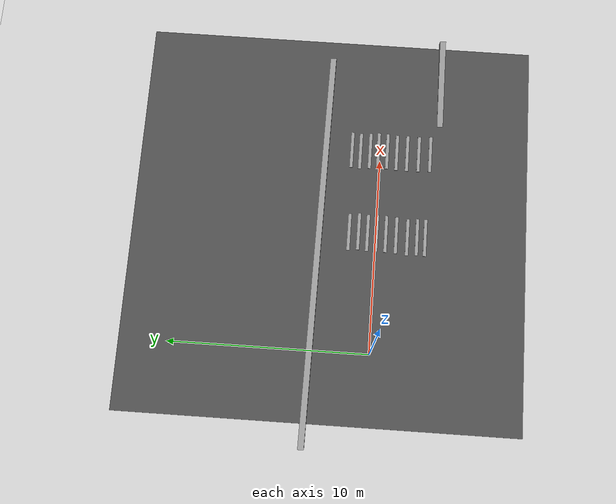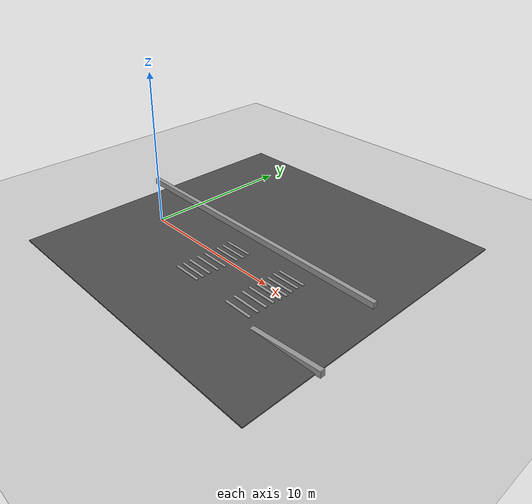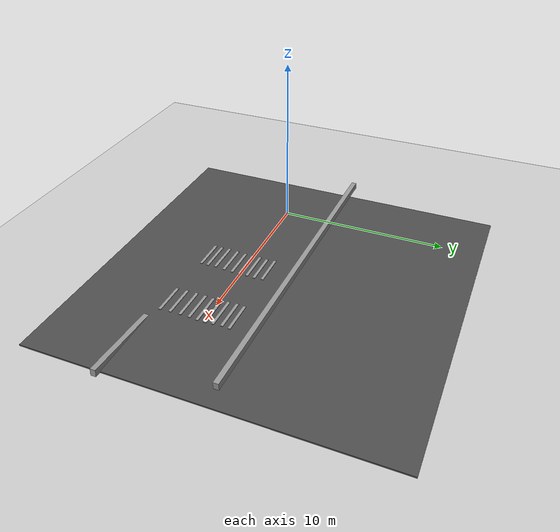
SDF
<sdf version="1.7">
 <world name="default">
  <model name="ground_plane">
   <static>1</static>
   <link name="link">
    <collision name="collision">
     <geometry><plane><normal>0 0 1</normal><size>100 100</size></plane></geometry>
     <surface><friction><ode><mu>100</mu><mu2>50</mu2></ode></friction></surface>
    </collision>
    <visual name="visual">
     <cast_shadows>0</cast_shadows>
     <geometry><plane><normal>0 0 1</normal><size>100 100</size></plane></geometry>
     <material>
      <script><uri>file://media/materials/scripts/gazebo.material</uri><name>Gazebo/Grey</name></script>
     </material>
    </visual>
   </link>
  </model>
  <light name="sun" type="directional">
   <pose>0 0 10 0 -0 0</pose>
   <diffuse>0.8 0.8 0.8 1</diffuse>
   <specular>0.2 0.2 0.2 1</specular>
   <attenuation>
    <range>1000</range>
    <constant>0.9</constant>
    <linear>0.01</linear>
    <quadratic>0.001</quadratic>
   </attenuation>
   <direction>-0.5 0.1 -0.9</direction>
   <spot><inner_angle>0</inner_angle><outer_angle>0</outer_angle><falloff>0</falloff></spot>
  </light>
  <scene><shadows>0</shadows><ambient>0.4 0.4 0.4 1</ambient><background>0.7 0.7 0.7 1</background></scene>
  <physics type="ode">
   <real_time_update_rate>1000</real_time_update_rate>
   <max_step_size>0.001</max_step_size>
   <real_time_factor>1</real_time_factor>
   <ode>
    <solver>
     <type>quick</type>
     <iters>150</iters>
     <precon_iters>0</precon_iters>
     <sor>1.4</sor>
     <use_dynamic_moi_rescaling>1</use_dynamic_moi_rescaling>
    </solver>
    <constraints>
     <cfm>1e-05</cfm>
     <erp>0.2</erp>
     <contact_max_correcting_vel>2000</contact_max_correcting_vel>
     <contact_surface_layer>0.01</contact_surface_layer>
    </constraints>
   </ode>
  </physics>
  <gravity>0 0 -9.8</gravity>
  <magnetic_field>6e-06 2.3e-05 -4.2e-05</magnetic_field>
  <atmosphere type="adiabatic"/>
  <audio><device>default</device></audio>
  <spherical_coordinates>
   <surface_model>EARTH_WGS84</surface_model>
   <latitude_deg>0</latitude_deg>
   <longitude_deg>0</longitude_deg>
   <elevation>0</elevation>
   <heading_deg>0</heading_deg>
  </spherical_coordinates>
  <model name="asphalt_plane">
   <static>1</static>
   <link name="link">
    <collision name="collision"><geometry><box><size>20 20 0.1</size></box></geometry></collision>
    <visual name="visual">
     <cast_shadows>0</cast_shadows>
     <geometry><box><size>20 20 0.1</size></box></geometry>
     <material>
      <script>
       <uri>model://asphalt_plane/materials/scripts</uri>
       <uri>model://asphalt_plane/materials/textures</uri>
       <name>vrc/asphalt</name>
      </script>
     </material>
    </visual>
   </link>
   <pose>6.48821 2.39059 0 0 -0 0</pose>
  </model>
  <model name="unit_box">
   <pose>6.14235 1.3627 0.069768 0 -6.2e-05 0.001556</pose>
   <link name="link">
    <inertial>
     <mass>1</mass>
     <inertia>
      <ixx>0.166667</ixx>
      <ixy>0</ixy>
      <ixz>0</ixz>
      <iyy>0.166667</iyy>
      <iyz>0</iyz>
      <izz>0.166667</izz>
     </inertia>
    </inertial>
    <collision name="collision"><geometry><box><size>1.90796 0.165074 0.039653</size></box></geometry></collision>
    <visual name="visual">
     <geometry><box><size>1.90796 0.165074 0.039653</size></box></geometry>
     <material>
      <script><name>Gazebo/Grey</name><uri>file://media/materials/scripts/gazebo.material</uri></script>
     </material>
    </visual>
   </link>
  </model>
  <model name="unit_box_clone">
   <pose>6.19397 0.878666 0.069768 0 6.2e-05 0.001528</pose>
   <link name="link">
    <inertial>
     <mass>1</mass>
     <inertia>
      <ixx>0.166667</ixx>
      <ixy>0</ixy>
      <ixz>0</ixz>
      <iyy>0.166667</iyy>
      <iyz>0</iyz>
      <izz>0.166667</izz>
     </inertia>
    </inertial>
    <collision name="collision"><geometry><box><size>1.90796 0.165074 0.039653</size></box></geometry></collision>
    <visual name="visual">
     <geometry><box><size>1.90796 0.165074 0.039653</size></box></geometry>
     <material>
      <script><name>Gazebo/Grey</name><uri>file://media/materials/scripts/gazebo.material</uri></script>
     </material>
    </visual>
   </link>
  </model>
  <model name="unit_box_clone_0">
   <pose>6.15597 0.419684 0.069768 0 6.2e-05 0.001744</pose>
   <link name="link">
    <inertial>
     <mass>1</mass>
     <inertia>
      <ixx>0.166667</ixx>
      <ixy>0</ixy>
      <ixz>0</ixz>
      <iyy>0.166667</iyy>
      <iyz>0</iyz>
      <izz>0.166667</izz>
     </inertia>
    </inertial>
    <collision name="collision"><geometry><box><size>1.90796 0.165074 0.039653</size></box></geometry></collision>
    <visual name="visual">
     <geometry><box><size>1.90796 0.165074 0.039653</size></box></geometry>
     <material>
      <script><name>Gazebo/Grey</name><uri>file://media/materials/scripts/gazebo.material</uri></script>
     </material>
    </visual>
   </link>
  </model>
  <model name="unit_box_clone_1">
   <pose>6.16792 -0.040699 0.069768 -0 -6.2e-05 0.001638</pose>
   <link name="link">
    <inertial>
     <mass>1</mass>
     <inertia>
      <ixx>0.166667</ixx>
      <ixy>0</ixy>
      <ixz>0</ixz>
      <iyy>0.166667</iyy>
      <iyz>0</iyz>
      <izz>0.166667</izz>
     </inertia>
    </inertial>
    <collision name="collision"><geometry><box><size>1.90796 0.165074 0.039653</size></box></geometry></collision>
    <visual name="visual">
     <geometry><box><size>1.90796 0.165074 0.039653</size></box></geometry>
     <material>
      <script><name>Gazebo/Grey</name><uri>file://media/materials/scripts/gazebo.material</uri></script>
     </material>
    </visual>
   </link>
  </model>
  <model name="unit_box_clone_2">
   <pose>6.15223 -0.509896 0.069768 0 6.2e-05 0.001702</pose>
   <link name="link">
    <inertial>
     <mass>1</mass>
     <inertia>
      <ixx>0.166667</ixx>
      <ixy>0</ixy>
      <ixz>0</ixz>
      <iyy>0.166667</iyy>
      <iyz>0</iyz>
      <izz>0.166667</izz>
     </inertia>
    </inertial>
    <collision name="collision"><geometry><box><size>1.90796 0.165074 0.039653</size></box></geometry></collision>
    <visual name="visual">
     <geometry><box><size>1.90796 0.165074 0.039653</size></box></geometry>
     <material>
      <script><name>Gazebo/Grey</name><uri>file://media/materials/scripts/gazebo.material</uri></script>
     </material>
    </visual>
   </link>
  </model>
  <model name="unit_box_clone_3">
   <pose>6.1205 -1.03586 0.069768 0 6.2e-05 0.001647</pose>
   <link name="link">
    <inertial>
     <mass>1</mass>
     <inertia>
      <ixx>0.166667</ixx>
      <ixy>0</ixy>
      <ixz>0</ixz>
      <iyy>0.166667</iyy>
      <iyz>0</iyz>
      <izz>0.166667</izz>
     </inertia>
    </inertial>
    <collision name="collision"><geometry><box><size>1.90796 0.165074 0.039653</size></box></geometry></collision>
    <visual name="visual">
     <geometry><box><size>1.90796 0.165074 0.039653</size></box></geometry>
     <material>
      <script><name>Gazebo/Grey</name><uri>file://media/materials/scripts/gazebo.material</uri></script>
     </material>
    </visual>
   </link>
  </model>
  <model name="unit_box_clone_4">
   <pose>6.06169 -1.60413 0.06982 0 3e-06 0.000534</pose>
   <link name="link">
    <inertial>
     <mass>1</mass>
     <inertia>
      <ixx>0.166667</ixx>
      <ixy>0</ixy>
      <ixz>0</ixz>
      <iyy>0.166667</iyy>
      <iyz>0</iyz>
      <izz>0.166667</izz>
     </inertia>
    </inertial>
    <collision name="collision"><geometry><box><size>1.90796 0.165074 0.039653</size></box></geometry></collision>
    <visual name="visual">
     <geometry><box><size>1.90796 0.165074 0.039653</size></box></geometry>
     <material>
      <script><name>Gazebo/Grey</name><uri>file://media/materials/scripts/gazebo.material</uri></script>
     </material>
    </visual>
   </link>
  </model>
  <model name="unit_box_clone_5">
   <pose>6.09921 -2.0938 0.069768 0 -6.2e-05 0.001143</pose>
   <link name="link">
    <inertial>
     <mass>1</mass>
     <inertia>
      <ixx>0.166667</ixx>
      <ixy>0</ixy>
      <ixz>0</ixz>
      <iyy>0.166667</iyy>
      <iyz>0</iyz>
      <izz>0.166667</izz>
     </inertia>
    </inertial>
    <collision name="collision"><geometry><box><size>1.90796 0.165074 0.039653</size></box></geometry></collision>
    <visual name="visual">
     <geometry><box><size>1.90796 0.165074 0.039653</size></box></geometry>
     <material>
      <script><name>Gazebo/Grey</name><uri>file://media/materials/scripts/gazebo.material</uri></script>
     </material>
    </visual>
   </link>
  </model>
  <model name="unit_box_clone_6">
   <pose>6.08286 -2.509 0.069768 0 -6.2e-05 0.001595</pose>
   <link name="link">
    <inertial>
     <mass>1</mass>
     <inertia>
      <ixx>0.166667</ixx>
      <ixy>0</ixy>
      <ixz>0</ixz>
      <iyy>0.166667</iyy>
      <iyz>0</iyz>
      <izz>0.166667</izz>
     </inertia>
    </inertial>
    <collision name="collision"><geometry><box><size>1.90796 0.165074 0.039653</size></box></geometry></collision>
    <visual name="visual">
     <geometry><box><size>1.90796 0.165074 0.039653</size></box></geometry>
     <material>
      <script><name>Gazebo/Grey</name><uri>file://media/materials/scripts/gazebo.material</uri></script>
     </material>
    </visual>
   </link>
  </model>
  <model name="unit_box_clone_7">
   <pose>10.5266 1.48121 0.069768 0 -6.2e-05 0.001811</pose>
   <link name="link">
    <inertial>
     <mass>1</mass>
     <inertia>
      <ixx>0.166667</ixx>
      <ixy>0</ixy>
      <ixz>0</ixz>
      <iyy>0.166667</iyy>
      <iyz>0</iyz>
      <izz>0.166667</izz>
     </inertia>
    </inertial>
    <collision name="collision"><geometry><box><size>1.90796 0.165074 0.039653</size></box></geometry></collision>
    <visual name="visual">
     <geometry><box><size>1.90796 0.165074 0.039653</size></box></geometry>
     <material>
      <script><name>Gazebo/Grey</name><uri>file://media/materials/scripts/gazebo.material</uri></script>
     </material>
    </visual>
   </link>
  </model>
  <model name="unit_box_clone_8">
   <pose>10.4888 1.03851 0.069768 -0 6.2e-05 0.00178</pose>
   <link name="link">
    <inertial>
     <mass>1</mass>
     <inertia>
      <ixx>0.166667</ixx>
      <ixy>0</ixy>
      <ixz>0</ixz>
      <iyy>0.166667</iyy>
      <iyz>0</iyz>
      <izz>0.166667</izz>
     </inertia>
    </inertial>
    <collision name="collision"><geometry><box><size>1.90796 0.165074 0.039653</size></box></geometry></collision>
    <visual name="visual">
     <geometry><box><size>1.90796 0.165074 0.039653</size></box></geometry>
     <material>
      <script><name>Gazebo/Grey</name><uri>file://media/materials/scripts/gazebo.material</uri></script>
     </material>
    </visual>
   </link>
  </model>
  <model name="unit_box_clone_9">
   <pose>10.528 0.538461 0.069768 0 -6.2e-05 0.001785</pose>
   <link name="link">
    <inertial>
     <mass>1</mass>
     <inertia>
      <ixx>0.166667</ixx>
      <ixy>0</ixy>
      <ixz>0</ixz>
      <iyy>0.166667</iyy>
      <iyz>0</iyz>
      <izz>0.166667</izz>
     </inertia>
    </inertial>
    <collision name="collision"><geometry><box><size>1.90796 0.165074 0.039653</size></box></geometry></collision>
    <visual name="visual">
     <geometry><box><size>1.90796 0.165074 0.039653</size></box></geometry>
     <material>
      <script><name>Gazebo/Grey</name><uri>file://media/materials/scripts/gazebo.material</uri></script>
     </material>
    </visual>
   </link>
  </model>
  <model name="unit_box_clone_10">
   <pose>10.569 0.110711 0.069768 -0 6.2e-05 0.001797</pose>
   <link name="link">
    <inertial>
     <mass>1</mass>
     <inertia>
      <ixx>0.166667</ixx>
      <ixy>0</ixy>
      <ixz>0</ixz>
      <iyy>0.166667</iyy>
      <iyz>0</iyz>
      <izz>0.166667</izz>
     </inertia>
    </inertial>
    <collision name="collision"><geometry><box><size>1.90796 0.165074 0.039653</size></box></geometry></collision>
    <visual name="visual">
     <geometry><box><size>1.90796 0.165074 0.039653</size></box></geometry>
     <material>
      <script><name>Gazebo/Grey</name><uri>file://media/materials/scripts/gazebo.material</uri></script>
     </material>
    </visual>
   </link>
  </model>
  <model name="unit_box_clone_11">
   <pose>10.5655 -0.353425 0.069768 0 -6.2e-05 0.001779</pose>
   <link name="link">
    <inertial>
     <mass>1</mass>
     <inertia>
      <ixx>0.166667</ixx>
      <ixy>0</ixy>
      <ixz>0</ixz>
      <iyy>0.166667</iyy>
      <iyz>0</iyz>
      <izz>0.166667</izz>
     </inertia>
    </inertial>
    <collision name="collision"><geometry><box><size>1.90796 0.165074 0.039653</size></box></geometry></collision>
    <visual name="visual">
     <geometry><box><size>1.90796 0.165074 0.039653</size></box></geometry>
     <material>
      <script><name>Gazebo/Grey</name><uri>file://media/materials/scripts/gazebo.material</uri></script>
     </material>
    </visual>
   </link>
  </model>
  <model name="unit_box_clone_12">
   <pose>10.5187 -0.845219 0.069768 0 -6.2e-05 0.001789</pose>
   <link name="link">
    <inertial>
     <mass>1</mass>
     <inertia>
      <ixx>0.166667</ixx>
      <ixy>0</ixy>
      <ixz>0</ixz>
      <iyy>0.166667</iyy>
      <iyz>0</iyz>
      <izz>0.166667</izz>
     </inertia>
    </inertial>
    <collision name="collision"><geometry><box><size>1.90796 0.165074 0.039653</size></box></geometry></collision>
    <visual name="visual">
     <geometry><box><size>1.90796 0.165074 0.039653</size></box></geometry>
     <material>
      <script><name>Gazebo/Grey</name><uri>file://media/materials/scripts/gazebo.material</uri></script>
     </material>
    </visual>
   </link>
  </model>
  <model name="unit_box_clone_13">
   <pose>10.5123 -1.3882 0.069768 0 -6.2e-05 0.001795</pose>
   <link name="link">
    <inertial>
     <mass>1</mass>
     <inertia>
      <ixx>0.166667</ixx>
      <ixy>0</ixy>
      <ixz>0</ixz>
      <iyy>0.166667</iyy>
      <iyz>0</iyz>
      <izz>0.166667</izz>
     </inertia>
    </inertial>
    <collision name="collision"><geometry><box><size>1.90796 0.165074 0.039653</size></box></geometry></collision>
    <visual name="visual">
     <geometry><box><size>1.90796 0.165074 0.039653</size></box></geometry>
     <material>
      <script><name>Gazebo/Grey</name><uri>file://media/materials/scripts/gazebo.material</uri></script>
     </material>
    </visual>
   </link>
  </model>
  <model name="unit_box_clone_14">
   <pose>10.5165 -1.98674 0.069826 0 -0 0.000698</pose>
   <link name="link">
    <inertial>
     <mass>1</mass>
     <inertia>
      <ixx>0.166667</ixx>
      <ixy>0</ixy>
      <ixz>0</ixz>
      <iyy>0.166667</iyy>
      <iyz>0</iyz>
      <izz>0.166667</izz>
     </inertia>
    </inertial>
    <collision name="collision"><geometry><box><size>1.90796 0.165074 0.039653</size></box></geometry></collision>
    <visual name="visual">
     <geometry><box><size>1.90796 0.165074 0.039653</size></box></geometry>
     <material>
      <script><name>Gazebo/Grey</name><uri>file://media/materials/scripts/gazebo.material</uri></script>
     </material>
    </visual>
   </link>
  </model>
  <model name="unit_box_clone_14">
   <pose>10.5165 -1.98674 0.069826 0 -0 0.000698</pose>
   <link name="link">
    <inertial>
     <mass>1</mass>
     <inertia>
      <ixx>0.166667</ixx>
      <ixy>0</ixy>
      <ixz>0</ixz>
      <iyy>0.166667</iyy>
      <iyz>0</iyz>
      <izz>0.166667</izz>
     </inertia>
    </inertial>
    <collision name="collision"><geometry><box><size>1.90796 0.165074 0.039653</size></box></geometry></collision>
    <visual name="visual">
     <geometry><box><size>1.90796 0.165074 0.039653</size></box></geometry>
     <material>
      <script><name>Gazebo/Grey</name><uri>file://media/materials/scripts/gazebo.material</uri></script>
     </material>
    </visual>
   </link>
  </model>
  <model name="unit_box_clone_15">
   <pose>10.548 -2.58402 0.069826 0 -0 0.000759</pose>
   <link name="link">
    <inertial>
     <mass>1</mass>
     <inertia>
      <ixx>0.166667</ixx>
      <ixy>0</ixy>
      <ixz>0</ixz>
      <iyy>0.166667</iyy>
      <iyz>0</iyz>
      <izz>0.166667</izz>
     </inertia>
    </inertial>
    <collision name="collision"><geometry><box><size>1.90796 0.165074 0.039653</size></box></geometry></collision>
    <visual name="visual">
     <geometry><box><size>1.90796 0.165074 0.039653</size></box></geometry>
     <material>
      <script><name>Gazebo/Grey</name><uri>file://media/materials/scripts/gazebo.material</uri></script>
     </material>
    </visual>
   </link>
  </model>
  <model name="unit_box_0">
   <pose>5.32465 2.88275 0.246162 0.000132 3e-06 -0.011057</pose>
   <link name="link">
    <inertial>
     <mass>1</mass>
     <inertia>
      <ixx>0.166667</ixx>
      <ixy>0</ixy>
      <ixz>0</ixz>
      <iyy>0.166667</iyy>
      <iyz>0</iyz>
      <izz>0.166667</izz>
     </inertia>
    </inertial>
    <collision name="collision"><geometry><box><size>20.1458 0.304202 0.392307</size></box></geometry></collision>
    <visual name="visual">
     <geometry><box><size>20.1458 0.304202 0.392307</size></box></geometry>
     <material>
      <script><name>Gazebo/Grey</name><uri>file://media/materials/scripts/gazebo.material</uri></script>
     </material>
    </visual>
   </link>
  </model>
  <model name="unit_box_0_clone">
   <pose>6.75965 -3.084 -0.536674 -0.000637 -0.072996 0.011267</pose>
   <link name="link">
    <inertial>
     <mass>1</mass>
     <inertia>
      <ixx>0.166667</ixx>
      <ixy>0</ixy>
      <ixz>0</ixz>
      <iyy>0.166667</iyy>
      <iyz>0</iyz>
      <izz>0.166667</izz>
     </inertia>
    </inertial>
    <collision name="collision"><geometry><box><size>20.1458 0.304202 0.392307</size></box></geometry></collision>
    <visual name="visual">
     <geometry><box><size>20.1458 0.304202 0.392307</size></box></geometry>
     <material>
      <script><name>Gazebo/Grey</name><uri>file://media/materials/scripts/gazebo.material</uri></script>
     </material>
    </visual>
   </link>
  </model>
 </world>
</sdf>
